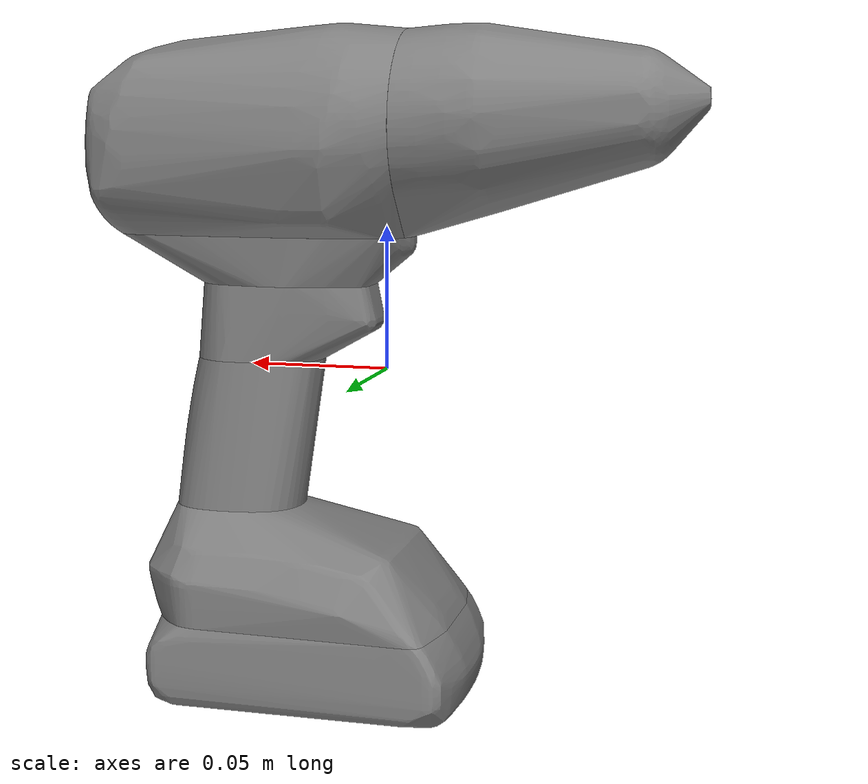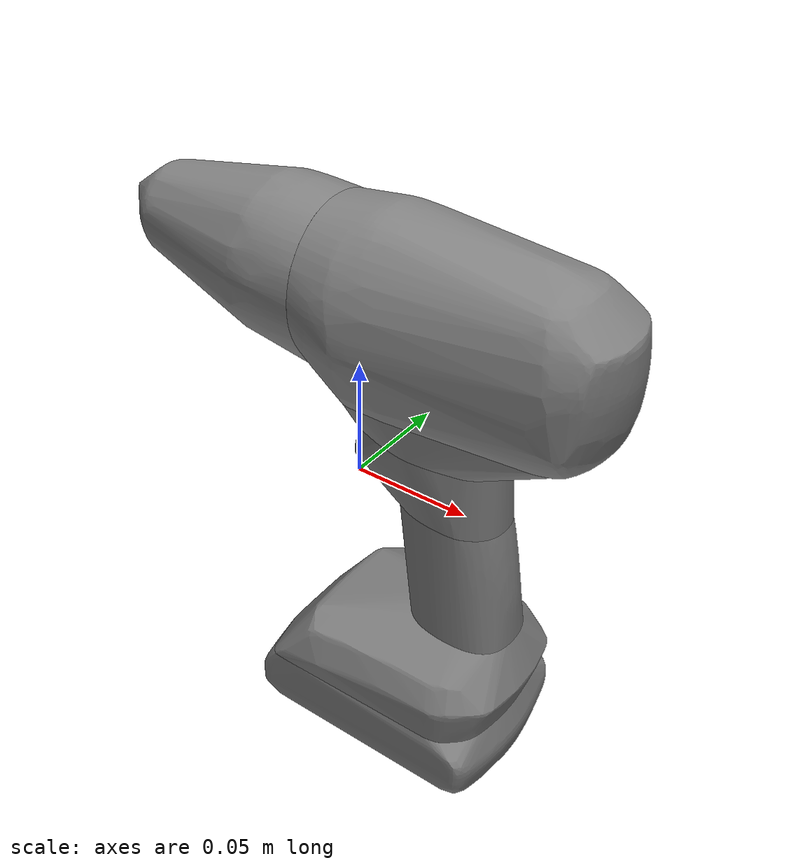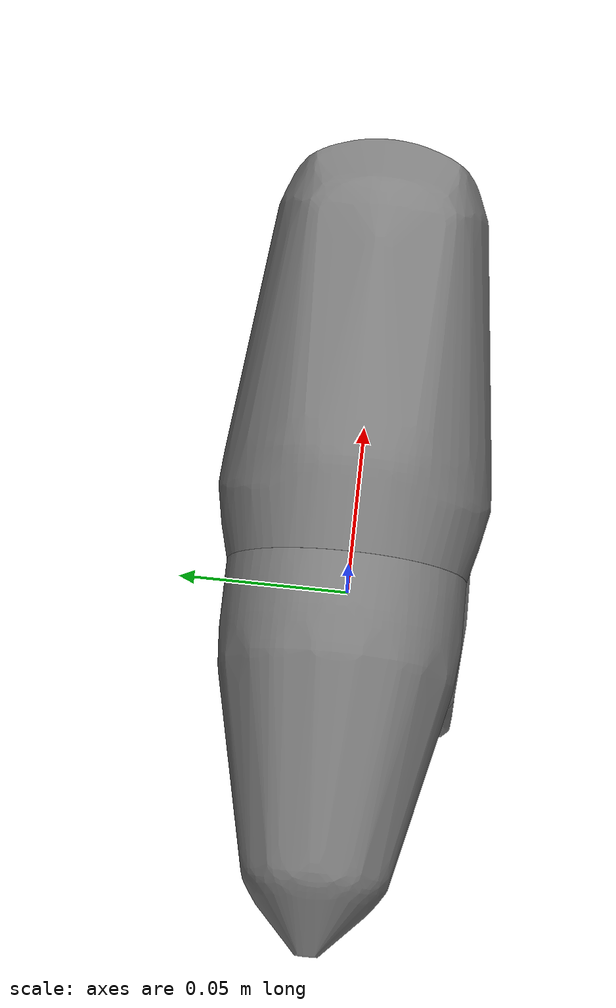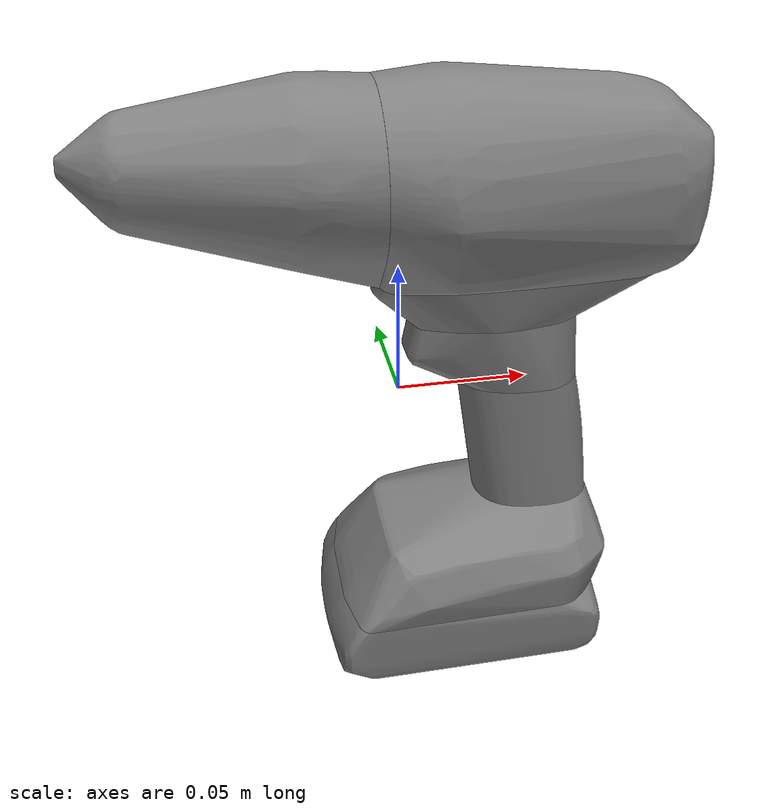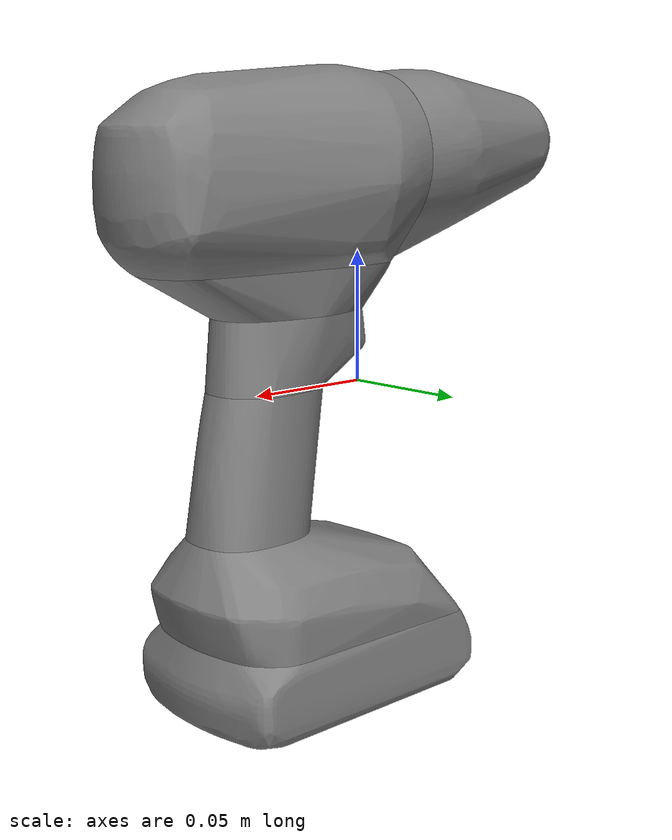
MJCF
<mujoco model="drill_001">
  <asset>
    <mesh
      file="robosuite/models/assets/objects/meshes/e_drill_1.obj"
      name="e_drill_1"
      scale="1.2 1.2 1.2"
    />
    <texture file="robosuite/models/assets/textures/e_drill_1.png" type="2d" name="e_drill_1_tex"/>
    <material
      name="e_drill_1_material"
      reflectance="0.7"
      texrepeat="1 1"
      texture="e_drill_1_tex"
      texuniform="true"
    />

    <mesh file="robosuite/models/assets/objects/meshes/e_drill_1_collision/collision_part_0.obj" name="col_part_0" scale="1.2 1.2 1.2" />
    <mesh file="robosuite/models/assets/objects/meshes/e_drill_1_collision/collision_part_1.obj" name="col_part_1" scale="1.2 1.2 1.2" />
    <mesh file="robosuite/models/assets/objects/meshes/e_drill_1_collision/collision_part_2.obj" name="col_part_2" scale="1.2 1.2 1.2" />
    <mesh file="robosuite/models/assets/objects/meshes/e_drill_1_collision/collision_part_3.obj" name="col_part_3" scale="1.2 1.2 1.2" />
    <mesh file="robosuite/models/assets/objects/meshes/e_drill_1_collision/collision_part_4.obj" name="col_part_4" scale="1.2 1.2 1.2" />
    <mesh file="robosuite/models/assets/objects/meshes/e_drill_1_collision/collision_part_5.obj" name="col_part_5" scale="1.2 1.2 1.2" />
    <mesh file="robosuite/models/assets/objects/meshes/e_drill_1_collision/collision_part_6.obj" name="col_part_6" scale="1.2 1.2 1.2" />
  </asset>

  <worldbody>
    <body>
      <body name="object">

        <geom
          pos="0 0 0"
          mesh="e_drill_1"
          type="mesh"
          material="e_drill_1_material"
          group="1"
          contype="0"
          conaffinity="0"
          mass="0"
        />

        <geom pos="0 0 0" mesh="col_part_0" type="mesh" group="0" condim="4" solimp="0.998 0.998 0.001" solref="0.001 1" density="50" friction="0.95 0.3 0.1" />
        <geom pos="0 0 0" mesh="col_part_1" type="mesh" group="0" condim="4" solimp="0.998 0.998 0.001" solref="0.001 1" density="50" friction="0.95 0.3 0.1" />
        <geom pos="0 0 0" mesh="col_part_2" type="mesh" group="0" condim="4" solimp="0.998 0.998 0.001" solref="0.001 1" density="50" friction="0.95 0.3 0.1" />
        <geom pos="0 0 0" mesh="col_part_3" type="mesh" group="0" condim="4" solimp="0.998 0.998 0.001" solref="0.001 1" density="50" friction="0.95 0.3 0.1" />
        <geom pos="0 0 0" mesh="col_part_4" type="mesh" group="0" condim="4" solimp="0.998 0.998 0.001" solref="0.001 1" density="50" friction="0.95 0.3 0.1" />
        <geom pos="0 0 0" mesh="col_part_5" type="mesh" group="0" condim="4" solimp="0.998 0.998 0.001" solref="0.001 1" density="50" friction="0.95 0.3 0.1" />
        <geom pos="0 0 0" mesh="col_part_6" type="mesh" group="0" condim="4" solimp="0.998 0.998 0.001" solref="0.001 1" density="50" friction="0.95 0.3 0.1" />

      </body>

      <site rgba="0 0 0 0" size="0.006" pos="0 0 -0.11762424" name="bottom_site"/>
      <site rgba="0 0 0 0" size="0.006" pos="0 0 0.11762424" name="top_site"/>
      <site rgba="0 0 0 0" size="0.006" pos="0.10772772 0.10772772 0" name="horizontal_radius_site"/>
    </body>
  </worldbody>
</mujoco>
